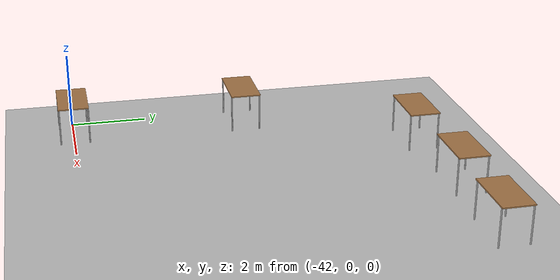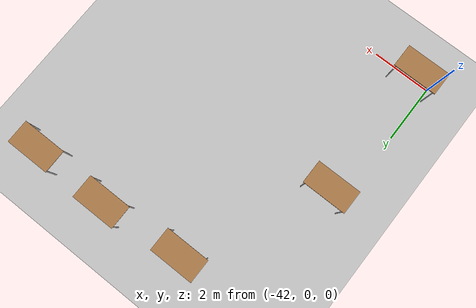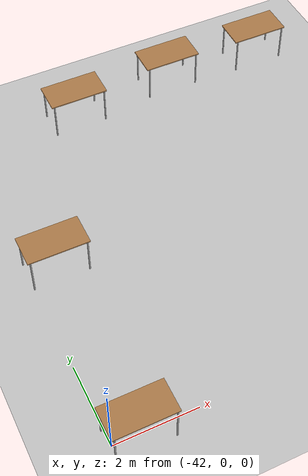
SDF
<sdf version="1.6">
 <world name="default">
  <model name="ground_plane">
   <static>1</static>
   <link name="link">
    <collision name="collision">
     <geometry><plane><normal>0 0 1</normal><size>100 100</size></plane></geometry>
     <surface><friction><ode><mu>100</mu><mu2>50</mu2></ode></friction></surface>
    </collision>
    <visual name="visual">
     <cast_shadows>0</cast_shadows>
     <geometry><plane><normal>0 0 1</normal><size>100 100</size></plane></geometry>
     <material>
      <script><uri>file://media/materials/scripts/gazebo.material</uri><name>Gazebo/Grey</name></script>
     </material>
    </visual>
   </link>
  </model>
  <model name="table_clone">
   <static>1</static>
   <link name="link">
    <collision name="surface">
     <pose>0 0 1 0 -0 0</pose>
     <geometry><box><size>1.5 0.8 0.03</size></box></geometry>
     <surface><friction><ode><mu>0.6</mu><mu2>0.6</mu2></ode></friction></surface>
    </collision>
    <visual name="visual1">
     <pose>0 0 1 0 -0 0</pose>
     <geometry><box><size>1.5 0.8 0.03</size></box></geometry>
     <material>
      <script><uri>file://media/materials/scripts/gazebo.material</uri><name>Gazebo/Wood</name></script>
     </material>
    </visual>
    <collision name="front_left_leg">
     <pose>0.68 0.38 0.5 0 -0 0</pose>
     <geometry><cylinder><radius>0.02</radius><length>1</length></cylinder></geometry>
    </collision>
    <visual name="front_left_leg">
     <pose>0.68 0.38 0.5 0 -0 0</pose>
     <geometry><cylinder><radius>0.02</radius><length>1</length></cylinder></geometry>
     <material>
      <script><uri>file://media/materials/scripts/gazebo.material</uri><name>Gazebo/Grey</name></script>
     </material>
    </visual>
    <collision name="front_right_leg">
     <pose>0.68 -0.38 0.5 0 -0 0</pose>
     <geometry><cylinder><radius>0.02</radius><length>1</length></cylinder></geometry>
    </collision>
    <visual name="front_right_leg">
     <pose>0.68 -0.38 0.5 0 -0 0</pose>
     <geometry><cylinder><radius>0.02</radius><length>1</length></cylinder></geometry>
     <material>
      <script><uri>file://media/materials/scripts/gazebo.material</uri><name>Gazebo/Grey</name></script>
     </material>
    </visual>
    <collision name="back_right_leg">
     <pose>-0.68 -0.38 0.5 0 -0 0</pose>
     <geometry><cylinder><radius>0.02</radius><length>1</length></cylinder></geometry>
    </collision>
    <visual name="back_right_leg">
     <pose>-0.68 -0.38 0.5 0 -0 0</pose>
     <geometry><cylinder><radius>0.02</radius><length>1</length></cylinder></geometry>
     <material>
      <script><uri>file://media/materials/scripts/gazebo.material</uri><name>Gazebo/Grey</name></script>
     </material>
    </visual>
    <collision name="back_left_leg">
     <pose>-0.68 0.38 0.5 0 -0 0</pose>
     <geometry><cylinder><radius>0.02</radius><length>1</length></cylinder></geometry>
    </collision>
    <visual name="back_left_leg">
     <pose>-0.68 0.38 0.5 0 -0 0</pose>
     <geometry><cylinder><radius>0.02</radius><length>1</length></cylinder></geometry>
     <material>
      <script><uri>file://media/materials/scripts/gazebo.material</uri><name>Gazebo/Grey</name></script>
     </material>
    </visual>
   </link>
   <pose>-39.0732 8.91712 0 0 -0 0</pose>
  </model>
  <model name="table_clone_0">
   <static>1</static>
   <link name="link">
    <collision name="surface">
     <pose>0 0 1 0 -0 0</pose>
     <geometry><box><size>1.5 0.8 0.03</size></box></geometry>
     <surface><friction><ode><mu>0.6</mu><mu2>0.6</mu2></ode></friction></surface>
    </collision>
    <visual name="visual1">
     <pose>0 0 1 0 -0 0</pose>
     <geometry><box><size>1.5 0.8 0.03</size></box></geometry>
     <material>
      <script><uri>file://media/materials/scripts/gazebo.material</uri><name>Gazebo/Wood</name></script>
     </material>
    </visual>
    <collision name="front_left_leg">
     <pose>0.68 0.38 0.5 0 -0 0</pose>
     <geometry><cylinder><radius>0.02</radius><length>1</length></cylinder></geometry>
    </collision>
    <visual name="front_left_leg">
     <pose>0.68 0.38 0.5 0 -0 0</pose>
     <geometry><cylinder><radius>0.02</radius><length>1</length></cylinder></geometry>
     <material>
      <script><uri>file://media/materials/scripts/gazebo.material</uri><name>Gazebo/Grey</name></script>
     </material>
    </visual>
    <collision name="front_right_leg">
     <pose>0.68 -0.38 0.5 0 -0 0</pose>
     <geometry><cylinder><radius>0.02</radius><length>1</length></cylinder></geometry>
    </collision>
    <visual name="front_right_leg">
     <pose>0.68 -0.38 0.5 0 -0 0</pose>
     <geometry><cylinder><radius>0.02</radius><length>1</length></cylinder></geometry>
     <material>
      <script><uri>file://media/materials/scripts/gazebo.material</uri><name>Gazebo/Grey</name></script>
     </material>
    </visual>
    <collision name="back_right_leg">
     <pose>-0.68 -0.38 0.5 0 -0 0</pose>
     <geometry><cylinder><radius>0.02</radius><length>1</length></cylinder></geometry>
    </collision>
    <visual name="back_right_leg">
     <pose>-0.68 -0.38 0.5 0 -0 0</pose>
     <geometry><cylinder><radius>0.02</radius><length>1</length></cylinder></geometry>
     <material>
      <script><uri>file://media/materials/scripts/gazebo.material</uri><name>Gazebo/Grey</name></script>
     </material>
    </visual>
    <collision name="back_left_leg">
     <pose>-0.68 0.38 0.5 0 -0 0</pose>
     <geometry><cylinder><radius>0.02</radius><length>1</length></cylinder></geometry>
    </collision>
    <visual name="back_left_leg">
     <pose>-0.68 0.38 0.5 0 -0 0</pose>
     <geometry><cylinder><radius>0.02</radius><length>1</length></cylinder></geometry>
     <material>
      <script><uri>file://media/materials/scripts/gazebo.material</uri><name>Gazebo/Grey</name></script>
     </material>
    </visual>
   </link>
   <pose>-36.3135 9.1471 0 0 -0 0</pose>
  </model>
  <model name="table_clone_1">
   <static>1</static>
   <link name="link">
    <collision name="surface">
     <pose>0 0 1 0 -0 0</pose>
     <geometry><box><size>1.5 0.8 0.03</size></box></geometry>
     <surface><friction><ode><mu>0.6</mu><mu2>0.6</mu2></ode></friction></surface>
    </collision>
    <visual name="visual1">
     <pose>0 0 1 0 -0 0</pose>
     <geometry><box><size>1.5 0.8 0.03</size></box></geometry>
     <material>
      <script><uri>file://media/materials/scripts/gazebo.material</uri><name>Gazebo/Wood</name></script>
     </material>
    </visual>
    <collision name="front_left_leg">
     <pose>0.68 0.38 0.5 0 -0 0</pose>
     <geometry><cylinder><radius>0.02</radius><length>1</length></cylinder></geometry>
    </collision>
    <visual name="front_left_leg">
     <pose>0.68 0.38 0.5 0 -0 0</pose>
     <geometry><cylinder><radius>0.02</radius><length>1</length></cylinder></geometry>
     <material>
      <script><uri>file://media/materials/scripts/gazebo.material</uri><name>Gazebo/Grey</name></script>
     </material>
    </visual>
    <collision name="front_right_leg">
     <pose>0.68 -0.38 0.5 0 -0 0</pose>
     <geometry><cylinder><radius>0.02</radius><length>1</length></cylinder></geometry>
    </collision>
    <visual name="front_right_leg">
     <pose>0.68 -0.38 0.5 0 -0 0</pose>
     <geometry><cylinder><radius>0.02</radius><length>1</length></cylinder></geometry>
     <material>
      <script><uri>file://media/materials/scripts/gazebo.material</uri><name>Gazebo/Grey</name></script>
     </material>
    </visual>
    <collision name="back_right_leg">
     <pose>-0.68 -0.38 0.5 0 -0 0</pose>
     <geometry><cylinder><radius>0.02</radius><length>1</length></cylinder></geometry>
    </collision>
    <visual name="back_right_leg">
     <pose>-0.68 -0.38 0.5 0 -0 0</pose>
     <geometry><cylinder><radius>0.02</radius><length>1</length></cylinder></geometry>
     <material>
      <script><uri>file://media/materials/scripts/gazebo.material</uri><name>Gazebo/Grey</name></script>
     </material>
    </visual>
    <collision name="back_left_leg">
     <pose>-0.68 0.38 0.5 0 -0 0</pose>
     <geometry><cylinder><radius>0.02</radius><length>1</length></cylinder></geometry>
    </collision>
    <visual name="back_left_leg">
     <pose>-0.68 0.38 0.5 0 -0 0</pose>
     <geometry><cylinder><radius>0.02</radius><length>1</length></cylinder></geometry>
     <material>
      <script><uri>file://media/materials/scripts/gazebo.material</uri><name>Gazebo/Grey</name></script>
     </material>
    </visual>
   </link>
   <pose>-33.715 9.10067 0 0 -0 0</pose>
  </model>
  <model name="table_clone_2">
   <static>1</static>
   <link name="link">
    <collision name="surface">
     <pose>0 0 1 0 -0 0</pose>
     <geometry><box><size>1.5 0.8 0.03</size></box></geometry>
     <surface><friction><ode><mu>0.6</mu><mu2>0.6</mu2></ode></friction></surface>
    </collision>
    <visual name="visual1">
     <pose>0 0 1 0 -0 0</pose>
     <geometry><box><size>1.5 0.8 0.03</size></box></geometry>
     <material>
      <script><uri>file://media/materials/scripts/gazebo.material</uri><name>Gazebo/Wood</name></script>
     </material>
    </visual>
    <collision name="front_left_leg">
     <pose>0.68 0.38 0.5 0 -0 0</pose>
     <geometry><cylinder><radius>0.02</radius><length>1</length></cylinder></geometry>
    </collision>
    <visual name="front_left_leg">
     <pose>0.68 0.38 0.5 0 -0 0</pose>
     <geometry><cylinder><radius>0.02</radius><length>1</length></cylinder></geometry>
     <material>
      <script><uri>file://media/materials/scripts/gazebo.material</uri><name>Gazebo/Grey</name></script>
     </material>
    </visual>
    <collision name="front_right_leg">
     <pose>0.68 -0.38 0.5 0 -0 0</pose>
     <geometry><cylinder><radius>0.02</radius><length>1</length></cylinder></geometry>
    </collision>
    <visual name="front_right_leg">
     <pose>0.68 -0.38 0.5 0 -0 0</pose>
     <geometry><cylinder><radius>0.02</radius><length>1</length></cylinder></geometry>
     <material>
      <script><uri>file://media/materials/scripts/gazebo.material</uri><name>Gazebo/Grey</name></script>
     </material>
    </visual>
    <collision name="back_right_leg">
     <pose>-0.68 -0.38 0.5 0 -0 0</pose>
     <geometry><cylinder><radius>0.02</radius><length>1</length></cylinder></geometry>
    </collision>
    <visual name="back_right_leg">
     <pose>-0.68 -0.38 0.5 0 -0 0</pose>
     <geometry><cylinder><radius>0.02</radius><length>1</length></cylinder></geometry>
     <material>
      <script><uri>file://media/materials/scripts/gazebo.material</uri><name>Gazebo/Grey</name></script>
     </material>
    </visual>
    <collision name="back_left_leg">
     <pose>-0.68 0.38 0.5 0 -0 0</pose>
     <geometry><cylinder><radius>0.02</radius><length>1</length></cylinder></geometry>
    </collision>
    <visual name="back_left_leg">
     <pose>-0.68 0.38 0.5 0 -0 0</pose>
     <geometry><cylinder><radius>0.02</radius><length>1</length></cylinder></geometry>
     <material>
      <script><uri>file://media/materials/scripts/gazebo.material</uri><name>Gazebo/Grey</name></script>
     </material>
    </visual>
   </link>
   <pose>-41.3405 4.62932 0 0 -0 0</pose>
  </model>
  <model name="table_clone_5">
   <static>1</static>
   <link name="link">
    <collision name="surface">
     <pose>0 0 1 0 -0 0</pose>
     <geometry><box><size>1.5 0.8 0.03</size></box></geometry>
     <surface><friction><ode><mu>0.6</mu><mu2>0.6</mu2></ode></friction></surface>
    </collision>
    <visual name="visual1">
     <pose>0 0 1 0 -0 0</pose>
     <geometry><box><size>1.5 0.8 0.03</size></box></geometry>
     <material>
      <script><uri>file://media/materials/scripts/gazebo.material</uri><name>Gazebo/Wood</name></script>
     </material>
    </visual>
    <collision name="front_left_leg">
     <pose>0.68 0.38 0.5 0 -0 0</pose>
     <geometry><cylinder><radius>0.02</radius><length>1</length></cylinder></geometry>
    </collision>
    <visual name="front_left_leg">
     <pose>0.68 0.38 0.5 0 -0 0</pose>
     <geometry><cylinder><radius>0.02</radius><length>1</length></cylinder></geometry>
     <material>
      <script><uri>file://media/materials/scripts/gazebo.material</uri><name>Gazebo/Grey</name></script>
     </material>
    </visual>
    <collision name="front_right_leg">
     <pose>0.68 -0.38 0.5 0 -0 0</pose>
     <geometry><cylinder><radius>0.02</radius><length>1</length></cylinder></geometry>
    </collision>
    <visual name="front_right_leg">
     <pose>0.68 -0.38 0.5 0 -0 0</pose>
     <geometry><cylinder><radius>0.02</radius><length>1</length></cylinder></geometry>
     <material>
      <script><uri>file://media/materials/scripts/gazebo.material</uri><name>Gazebo/Grey</name></script>
     </material>
    </visual>
    <collision name="back_right_leg">
     <pose>-0.68 -0.38 0.5 0 -0 0</pose>
     <geometry><cylinder><radius>0.02</radius><length>1</length></cylinder></geometry>
    </collision>
    <visual name="back_right_leg">
     <pose>-0.68 -0.38 0.5 0 -0 0</pose>
     <geometry><cylinder><radius>0.02</radius><length>1</length></cylinder></geometry>
     <material>
      <script><uri>file://media/materials/scripts/gazebo.material</uri><name>Gazebo/Grey</name></script>
     </material>
    </visual>
    <collision name="back_left_leg">
     <pose>-0.68 0.38 0.5 0 -0 0</pose>
     <geometry><cylinder><radius>0.02</radius><length>1</length></cylinder></geometry>
    </collision>
    <visual name="back_left_leg">
     <pose>-0.68 0.38 0.5 0 -0 0</pose>
     <geometry><cylinder><radius>0.02</radius><length>1</length></cylinder></geometry>
     <material>
      <script><uri>file://media/materials/scripts/gazebo.material</uri><name>Gazebo/Grey</name></script>
     </material>
    </visual>
   </link>
   <pose>-41.37 0.030626 0 0 -0 0</pose>
  </model>
 </world>
</sdf>
